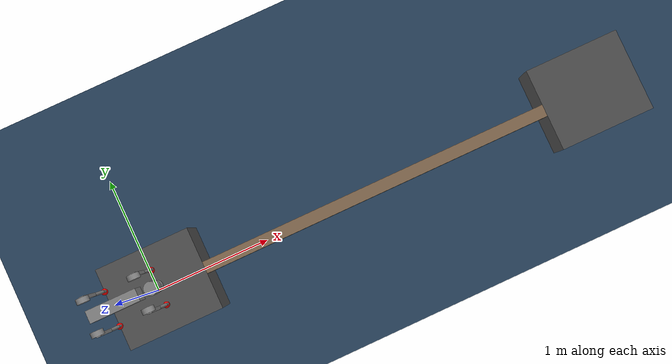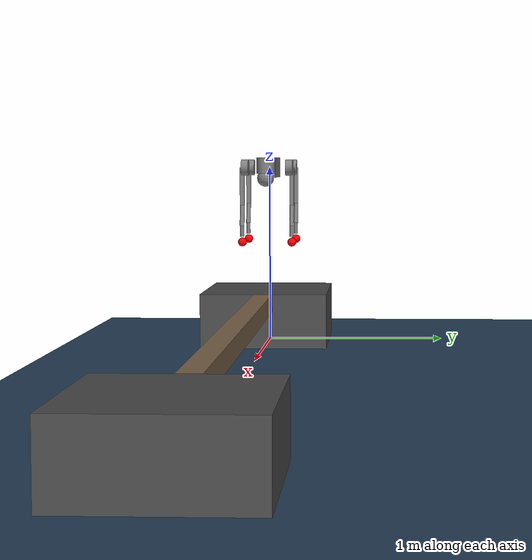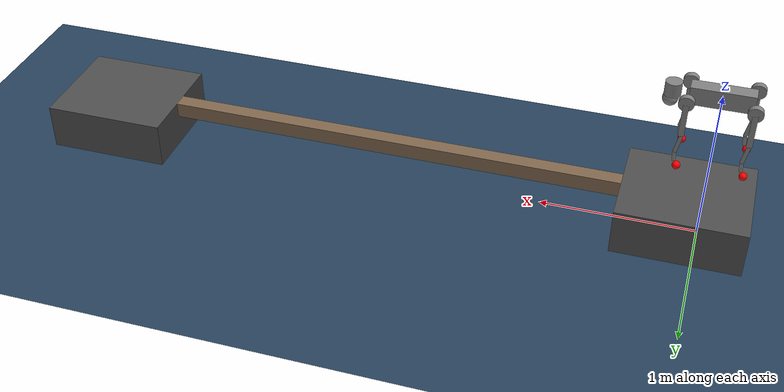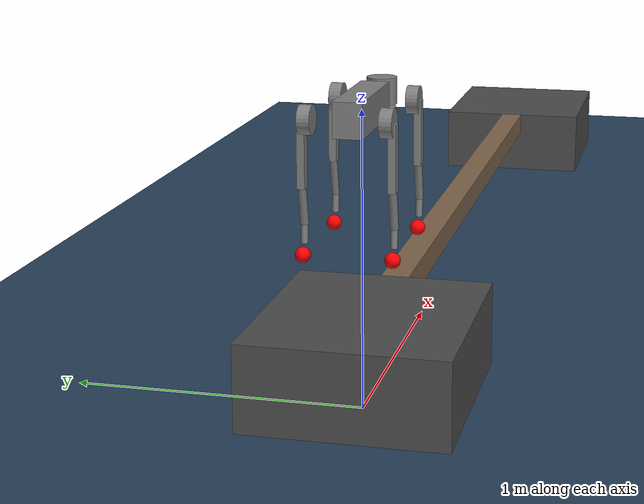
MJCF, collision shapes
<mujoco model="go2 bridge camera scene">
  <include file="go2.xml"/>

  <statistic center="2.0 0 0.5" extent="6.0"/>

  <visual>
    <headlight diffuse="0.6 0.6 0.6" ambient="0.3 0.3 0.3" specular="0 0 0"/>
    <rgba haze="0.15 0.25 0.35 1"/>
    <global azimuth="-130" elevation="-20"/>
  </visual>

  <asset>
    <texture type="skybox" builtin="gradient" rgb1="0.3 0.5 0.7" rgb2="0 0 0" width="512" height="3072"/>
    <texture type="2d" name="groundplane" builtin="checker" mark="edge" rgb1="0.2 0.3 0.4" rgb2="0.1 0.2 0.3"
      markrgb="0.8 0.8 0.8" width="300" height="300"/>
    <material name="groundplane" texture="groundplane" texuniform="true" texrepeat="5 5" reflectance="0.2"/>
  </asset>

  <worldbody>
    <light pos="0 0 3.0" dir="0 0 -1" directional="true"/>

    <!-- Low catch floor below the bridge.  It is intentionally below the camera
      prior's height filter, so the bridge remains the local walkable surface. -->
    <geom name="floor" pos="2.0 0 0.0" size="0 0 0.05" type="plane" material="groundplane"/>

    <geom name="platform_a" type="box" size="0.4 0.35 0.15" pos="0.1 0 0.15" rgba="0.3 0.3 0.3 1"/>
    <geom name="straight_bridge" type="box" size="1.5 0.05 0.05" pos="2.0 0 0.25" rgba="0.5 0.4 0.3 1"/>
    <geom name="platform_b" type="box" size="0.4 0.35 0.15" pos="3.9 0 0.15" rgba="0.3 0.3 0.3 1"/>

  </worldbody>
</mujoco>

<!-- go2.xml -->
<mujoco model="go2">
  <compiler angle="radian" meshdir="assets" autolimits="true" />

  <option cone="elliptic" impratio="100" />

  <default>
    <default class="go2">
      <geom friction="0.4" margin="0.001" condim="1"/>
      <joint axis="0 1 0" damping="0.1" armature="0.01" frictionloss="0.2"/>
      <motor ctrlrange="-23.7 23.7"/>
      <default class="abduction">
        <joint axis="1 0 0" range="-1.0472 1.0472"/>
      </default>
      <default class="hip">
        <default class="front_hip">
          <joint range="-1.5708 3.4907"/>
        </default>
        <default class="back_hip">
          <joint range="-0.5236 4.5379"/>
        </default>
      </default>
      <default class="knee">
        <joint range="-2.7227 -0.83776"/>
        <motor ctrlrange="-45.43 45.43"/>
      </default>
      <default class="visual">
        <geom type="mesh" contype="0" conaffinity="0" group="2"/>
      </default>
      <default class="collision">
        <geom group="3"/>
        <default class="foot">
          <geom size="0.022" pos="-0.002 0 0" priority="1" condim="6"
            friction="0.4 0.02 0.01"/>
        </default>
      </default>
      <default class="foot_site">
        <site type="sphere" size="0.025" pos="-0.002 0 0" rgba="1 0 0 1.0"/>
      </default>
    </default>
  </default>

  <asset>
    <material name="metal" rgba=".9 .95 .95 1" />
    <material name="black" rgba="0 0 0 1" />
    <material name="white" rgba="1 1 1 1" />
    <material name="gray" rgba="0.671705 0.692426 0.774270 1" />

    <mesh file="base_0.obj" />
    <mesh file="base_1.obj" />
    <mesh file="base_2.obj" />
    <mesh file="base_3.obj" />
    <mesh file="base_4.obj" />
    <mesh file="hip_0.obj" />
    <mesh file="hip_1.obj" />
    <mesh file="thigh_0.obj" />
    <mesh file="thigh_1.obj" />
    <mesh file="thigh_mirror_0.obj" />
    <mesh file="thigh_mirror_1.obj" />
    <mesh file="calf_0.obj" />
    <mesh file="calf_1.obj" />
    <mesh file="calf_mirror_0.obj" />
    <mesh file="calf_mirror_1.obj" />
    <mesh file="foot.obj" />
  </asset>

  <worldbody>
    <!-- total mass: 16.514412 kg, hw: 16.45 kg -->
    <body name="base_link" pos="0 0 1.0" childclass="go2">
      <inertial pos="0.021112 0 -0.005366" quat="-0.000543471 0.713435 -0.00173769 0.700719"
        mass="6.921"
        diaginertia="0.107027 0.0980771 0.0244531" />
      <freejoint />
      <geom mesh="base_0" material="black" class="visual" />
      <geom mesh="base_1" material="black" class="visual" />
      <geom mesh="base_2" material="black" class="visual" />
      <geom mesh="base_3" material="white" class="visual" />
      <geom mesh="base_4" material="gray" class="visual" />
      <geom size="0.1881 0.04675 0.057" type="box" class="collision" />
      <geom size="0.05 0.045" pos="0.285 0 0.01" type="cylinder" class="collision" />
      <geom size="0.047" pos="0.293 0 -0.06" class="collision" />
      <site name="imu" pos="-0.02557 0 0.04232" />
      <camera name="front_depth_camera" mode="fixed" resolution="1 1" />
      <geom name="front_depth_camera_visual" type="box" pos="0 0 0"
        size="0.0125 0.045 0.0125"
        contype="0" conaffinity="0" group="1" rgba="0 0 0 0" />
      <body name="FL_hip_rotor" pos="0.11215 0.04675 0">
        <inertial pos="0 0 0" mass="0.089"
          diaginertia="0.000111842 0.000059647 0.000059647" />
      </body>
      <body name="FL_hip" pos="0.1934 0.0465 0">
        <inertial pos="-0.0054 0.00194 -0.000105" quat="0.497014 0.499245 0.505462 0.498237"
          mass="0.678"
          diaginertia="0.00088403 0.000596003 0.000479967" />
        <joint name="FL_hip_joint" class="abduction" />
        <geom mesh="hip_0" material="metal" class="visual" />
        <geom mesh="hip_1" material="gray" class="visual" />
        <geom size="0.046 0.02" pos="0 0.08 0" quat="1 1 0 0" type="cylinder" class="collision" />
        <body name="FL_thigh_rotor" pos="0 -0.00015 0">
          <inertial pos="0 0 0" mass="0.089"
            diaginertia="0.000059647 0.000111842 0.000059647" />
        </body>
        <body name="FL_thigh" pos="0 0.0955 0">
          <inertial pos="-0.00374 -0.0223 -0.0327" quat="0.829533 0.0847635 -0.0200632 0.551623"
            mass="1.152"
            diaginertia="0.00594973 0.00584149 0.000878787" />
          <joint name="FL_thigh_joint" class="front_hip" />
          <geom mesh="thigh_0" material="metal" class="visual" />
          <geom mesh="thigh_1" material="gray" class="visual" />
          <geom size="0.1065 0.01225 0.017" pos="0 0 -0.1065" quat="0.707107 0 0.707107 0"
            type="box" class="collision" />
          <body name="FL_calf_rotor" pos="0 -0.03235 0">
            <inertial pos="0 0 0" mass="0.089"
              diaginertia="0.000059647 0.000111842 0.000059647" />
          </body>
          <body name="FL_calf" pos="0 0 -0.213">
            <inertial pos="0.00629595 -0.000622121 -0.141417"
              quat="0.710672 0.00154099 -0.00450087 0.703508"
              mass="0.241352" diaginertia="0.0014901 0.00146356 5.31397e-05" />
            <joint name="FL_calf_joint" class="knee" />
            <geom mesh="calf_0" material="gray" class="visual" />
            <geom mesh="calf_1" material="black" class="visual" />
            <geom size="0.012 0.06" pos="0.008 0 -0.06" quat="0.994493 0 -0.104807 0"
              type="cylinder" class="collision" />
            <geom size="0.011 0.0325" pos="0.02 0 -0.148" quat="0.999688 0 0.0249974 0"
              type="cylinder" class="collision" />
            <body name="FL_foot" pos="0 0 -0.213" >
              <inertial diaginertia="9.600000000000001e-06 9.600000000000001e-06 9.600000000000001e-06" mass="0.06" pos="0 0 0"/>
              <body name="FL_foot_for_collision" pos="0 0 0">
                <inertial diaginertia="1e-14 1e-14 1e-14" mass="1e-6" pos="0 0 0"/>
                <geom pos="0 0 0" mesh="foot" class="visual" material="black" />
                <geom name="FL" class="foot" />
                <site name="FL_site" class="foot_site"/>
                <site name="FL_force" pos="0 0 0" size="0.017" type="sphere"/>
              </body>
            </body>
          </body>
        </body>
      </body>
      <body name="FR_hip_rotor" pos="0.11215 -0.04675 0">
        <inertial pos="0 0 0" mass="0.089"
          diaginertia="0.000111842 0.000059647 0.000059647" />
      </body>
      <body name="FR_hip" pos="0.1934 -0.0465 0">
        <inertial pos="-0.0054 -0.00194 -0.000105" quat="0.498237 0.505462 0.499245 0.497014"
          mass="0.678"
          diaginertia="0.00088403 0.000596003 0.000479967" />
        <joint name="FR_hip_joint" class="abduction" />
        <geom mesh="hip_0" material="metal" class="visual" quat="4.63268e-05 1 0 0" />
        <geom mesh="hip_1" material="gray" class="visual" quat="4.63268e-05 1 0 0" />
        <geom size="0.046 0.02" pos="0 -0.08 0" quat="0.707107 0.707107 0 0" type="cylinder"
          class="collision" />
        <body name="FR_thigh_rotor" pos="0 0.00015 0">
          <inertial pos="0 0 0" mass="0.089"
            diaginertia="0.000059647 0.000111842 0.000059647" />
        </body>
        <body name="FR_thigh" pos="0 -0.0955 0">
          <inertial pos="-0.00374 0.0223 -0.0327" quat="0.551623 -0.0200632 0.0847635 0.829533"
            mass="1.152"
            diaginertia="0.00594973 0.00584149 0.000878787" />
          <joint name="FR_thigh_joint" class="front_hip" />
          <geom mesh="thigh_mirror_0" material="metal" class="visual" />
          <geom mesh="thigh_mirror_1" material="gray" class="visual" />
          <geom size="0.1065 0.01225 0.017" pos="0 0 -0.1065" quat="0.707107 0 0.707107 0"
            type="box" class="collision" />
          <body name="FR_calf_rotor" pos="0 0.03235 0">
            <inertial pos="0 0 0" mass="0.089"
              diaginertia="0.000059647 0.000111842 0.000059647" />
          </body>
          <body name="FR_calf" pos="0 0 -0.213">
            <inertial pos="0.00629595 0.000622121 -0.141417"
              quat="0.703508 -0.00450087 0.00154099 0.710672"
              mass="0.241352" diaginertia="0.0014901 0.00146356 5.31397e-05" />
            <joint name="FR_calf_joint" class="knee" />
            <geom mesh="calf_mirror_0" material="gray" class="visual" />
            <geom mesh="calf_mirror_1" material="black" class="visual" />
            <geom size="0.013 0.06" pos="0.01 0 -0.06" quat="0.995004 0 -0.0998334 0"
              type="cylinder" class="collision" />
            <geom size="0.011 0.0325" pos="0.02 0 -0.148" quat="0.999688 0 0.0249974 0"
              type="cylinder" class="collision" />
            <body name="FR_foot" pos="0 0 -0.213" >
              <inertial diaginertia="9.600000000000001e-06 9.600000000000001e-06 9.600000000000001e-06" mass="0.06" pos="0 0 0"/>
              <body name="FR_foot_for_collision" pos="0 0 0">
                <inertial diaginertia="1e-14 1e-14 1e-14" mass="1e-6" pos="0 0 0"/>
                <geom pos="0 0 0" mesh="foot" class="visual" material="black" />
                <geom name="FR" class="foot" />
                <site name="FR_site" class="foot_site"/>
                <site name="FR_force" pos="0 0 0" size="0.017" type="sphere"/>
              </body>
            </body>
          </body>
        </body>
      </body>
      <body name="RL_hip_rotor" pos="-0.11215 0.04675 0">
        <inertial pos="0 0 0" mass="0.089"
          diaginertia="0.000111842 0.000059647 0.000059647" />
      </body>
      <body name="RL_hip" pos="-0.1934 0.0465 0">
        <inertial pos="0.0054 0.00194 -0.000105" quat="0.505462 0.498237 0.497014 0.499245"
          mass="0.678"
          diaginertia="0.00088403 0.000596003 0.000479967" />
        <joint name="RL_hip_joint" class="abduction" />
        <geom mesh="hip_0" material="metal" class="visual" quat="4.63268e-05 0 1 0" />
        <geom mesh="hip_1" material="gray" class="visual" quat="4.63268e-05 0 1 0" />
        <geom size="0.046 0.02" pos="0 0.08 0" quat="0.707107 0.707107 0 0" type="cylinder"
          class="collision" />
        <body name="RL_thigh_rotor" pos="0 -0.00015 0">
          <inertial pos="0 0 0" mass="0.089"
            diaginertia="0.000059647 0.000111842 0.000059647" />
        </body>
        <body name="RL_thigh" pos="0 0.0955 0">
          <inertial pos="-0.00374 -0.0223 -0.0327" quat="0.829533 0.0847635 -0.0200632 0.551623"
            mass="1.152"
            diaginertia="0.00594973 0.00584149 0.000878787" />
          <joint name="RL_thigh_joint" class="back_hip" />
          <geom mesh="thigh_0" material="metal" class="visual" />
          <geom mesh="thigh_1" material="gray" class="visual" />
          <geom size="0.1065 0.01225 0.017" pos="0 0 -0.1065" quat="0.707107 0 0.707107 0"
            type="box" class="collision" />
          <body name="RL_calf_rotor" pos="0 -0.03235 0">
            <inertial pos="0 0 0" mass="0.089"
              diaginertia="0.000059647 0.000111842 0.000059647" />
          </body>
          <body name="RL_calf" pos="0 0 -0.213">
            <inertial pos="0.00629595 -0.000622121 -0.141417"
              quat="0.710672 0.00154099 -0.00450087 0.703508"
              mass="0.241352" diaginertia="0.0014901 0.00146356 5.31397e-05" />
            <joint name="RL_calf_joint" class="knee" />
            <geom mesh="calf_0" material="gray" class="visual" />
            <geom mesh="calf_1" material="black" class="visual" />
            <geom size="0.013 0.06" pos="0.01 0 -0.06" quat="0.995004 0 -0.0998334 0"
              type="cylinder" class="collision" />
            <geom size="0.011 0.0325" pos="0.02 0 -0.148" quat="0.999688 0 0.0249974 0"
              type="cylinder" class="collision" />
            <body name="RL_foot" pos="0 0 -0.213" >
              <inertial diaginertia="9.600000000000001e-06 9.600000000000001e-06 9.600000000000001e-06" mass="0.06" pos="0 0 0"/>
              <body name="RL_foot_for_collision" pos="0 0 0">
                <inertial diaginertia="1e-14 1e-14 1e-14" mass="1e-6" pos="0 0 0"/>
                <geom pos="0 0 0" mesh="foot" class="visual" material="black" />
                <geom name="RL" class="foot" />
                <site name="RL_site" class="foot_site"/>
                <site name="RL_force" pos="0 0 0" size="0.017" type="sphere"/>
              </body>
            </body>
          </body>
        </body>
      </body>
      <body name="RR_hip_rotor" pos="-0.11215 -0.04675 0">
        <inertial pos="0 0 0" mass="0.089"
          diaginertia="0.000111842 0.000059647 0.000059647" />
      </body>
      <body name="RR_hip" pos="-0.1934 -0.0465 0">
        <inertial pos="0.0054 -0.00194 -0.000105" quat="0.499245 0.497014 0.498237 0.505462"
          mass="0.678"
          diaginertia="0.00088403 0.000596003 0.000479967" />
        <joint name="RR_hip_joint" class="abduction" />
        <geom mesh="hip_0" material="metal" class="visual"
          quat="2.14617e-09 4.63268e-05 4.63268e-05 -1" />
        <geom mesh="hip_1" material="gray" class="visual"
          quat="2.14617e-09 4.63268e-05 4.63268e-05 -1" />
        <geom size="0.046 0.02" pos="0 -0.08 0" quat="0.707107 0.707107 0 0" type="cylinder"
          class="collision" />
        <body name="RR_thigh_rotor" pos="0 0.00015 0">
          <inertial pos="0 0 0" mass="0.089"
            diaginertia="0.000059647 0.000111842 0.000059647" />
        </body>
        <body name="RR_thigh" pos="0 -0.0955 0">
          <inertial pos="-0.00374 0.0223 -0.0327" quat="0.551623 -0.0200632 0.0847635 0.829533"
            mass="1.152"
            diaginertia="0.00594973 0.00584149 0.000878787" />
          <joint name="RR_thigh_joint" class="back_hip" />
          <geom mesh="thigh_mirror_0" material="metal" class="visual" />
          <geom mesh="thigh_mirror_1" material="gray" class="visual" />
          <geom size="0.1065 0.01225 0.017" pos="0 0 -0.1065" quat="0.707107 0 0.707107 0"
            type="box" class="collision" />
          <body name="RR_calf_rotor" pos="0 0.03235 0">
            <inertial pos="0 0 0" mass="0.089"
              diaginertia="0.000059647 0.000111842 0.000059647" />
          </body>
          <body name="RR_calf" pos="0 0 -0.213">
            <inertial pos="0.00629595 0.000622121 -0.141417"
              quat="0.703508 -0.00450087 0.00154099 0.710672"
              mass="0.241352" diaginertia="0.0014901 0.00146356 5.31397e-05" />
            <joint name="RR_calf_joint" class="knee" />
            <geom mesh="calf_mirror_0" material="gray" class="visual" />
            <geom mesh="calf_mirror_1" material="black" class="visual" />
            <geom size="0.013 0.06" pos="0.01 0 -0.06" quat="0.995004 0 -0.0998334 0"
              type="cylinder" class="collision" />
            <geom size="0.011 0.0325" pos="0.02 0 -0.148" quat="0.999688 0 0.0249974 0"
              type="cylinder" class="collision" />
            <body name="RR_foot" pos="0 0 -0.213" >
              <inertial diaginertia="9.600000000000001e-06 9.600000000000001e-06 9.600000000000001e-06" mass="0.06" pos="0 0 0"/>
              <body name="RR_foot_for_collision" pos="0 0 0">
                <inertial diaginertia="1e-14 1e-14 1e-14" mass="1e-6" pos="0 0 0"/>
                <geom pos="0 0 0" mesh="foot" class="visual" material="black" />
                <geom name="RR" class="foot" />
                <site name="RR_site" class="foot_site"/>
                <site name="RR_force" pos="0 0 0" size="0.017" type="sphere"/>
              </body>
            </body>
          </body>
        </body>
      </body>
    </body>
  </worldbody>

  <actuator>
    <motor class="abduction" name="FR_hip" joint="FR_hip_joint" />
    <motor class="hip" name="FR_thigh" joint="FR_thigh_joint" />
    <motor class="knee" name="FR_calf" joint="FR_calf_joint" />
    <motor class="abduction" name="FL_hip" joint="FL_hip_joint" />
    <motor class="hip" name="FL_thigh" joint="FL_thigh_joint" />
    <motor class="knee" name="FL_calf" joint="FL_calf_joint" />
    <motor class="abduction" name="RR_hip" joint="RR_hip_joint" />
    <motor class="hip" name="RR_thigh" joint="RR_thigh_joint" />
    <motor class="knee" name="RR_calf" joint="RR_calf_joint" />
    <motor class="abduction" name="RL_hip" joint="RL_hip_joint" />
    <motor class="hip" name="RL_thigh" joint="RL_thigh_joint" />
    <motor class="knee" name="RL_calf" joint="RL_calf_joint" />
  </actuator>

  <sensor>
    <jointpos name="FR_hip_pos" joint="FR_hip_joint" />
    <jointpos name="FR_thigh_pos" joint="FR_thigh_joint" />
    <jointpos name="FR_calf_pos" joint="FR_calf_joint" />
    <jointpos name="FL_hip_pos" joint="FL_hip_joint" />
    <jointpos name="FL_thigh_pos" joint="FL_thigh_joint" />
    <jointpos name="FL_calf_pos" joint="FL_calf_joint" />
    <jointpos name="RR_hip_pos" joint="RR_hip_joint" />
    <jointpos name="RR_thigh_pos" joint="RR_thigh_joint" />
    <jointpos name="RR_calf_pos" joint="RR_calf_joint" />
    <jointpos name="RL_hip_pos" joint="RL_hip_joint" />
    <jointpos name="RL_thigh_pos" joint="RL_thigh_joint" />
    <jointpos name="RL_calf_pos" joint="RL_calf_joint" />

    <jointvel name="FR_hip_vel" joint="FR_hip_joint" />
    <jointvel name="FR_thigh_vel" joint="FR_thigh_joint" />
    <jointvel name="FR_calf_vel" joint="FR_calf_joint" />
    <jointvel name="FL_hip_vel" joint="FL_hip_joint" />
    <jointvel name="FL_thigh_vel" joint="FL_thigh_joint" />
    <jointvel name="FL_calf_vel" joint="FL_calf_joint" />
    <jointvel name="RR_hip_vel" joint="RR_hip_joint" />
    <jointvel name="RR_thigh_vel" joint="RR_thigh_joint" />
    <jointvel name="RR_calf_vel" joint="RR_calf_joint" />
    <jointvel name="RL_hip_vel" joint="RL_hip_joint" />
    <jointvel name="RL_thigh_vel" joint="RL_thigh_joint" />
    <jointvel name="RL_calf_vel" joint="RL_calf_joint" />

    <jointactuatorfrc name="FR_hip_torque" joint="FR_hip_joint" noise="0.01" />
    <jointactuatorfrc name="FR_thigh_torque" joint="FR_thigh_joint" noise="0.01" />
    <jointactuatorfrc name="FR_calf_torque" joint="FR_calf_joint" noise="0.01" />
    <jointactuatorfrc name="FL_hip_torque" joint="FL_hip_joint" noise="0.01" />
    <jointactuatorfrc name="FL_thigh_torque" joint="FL_thigh_joint" noise="0.01" />
    <jointactuatorfrc name="FL_calf_torque" joint="FL_calf_joint" noise="0.01" />
    <jointactuatorfrc name="RR_hip_torque" joint="RR_hip_joint" noise="0.01" />
    <jointactuatorfrc name="RR_thigh_torque" joint="RR_thigh_joint" noise="0.01" />
    <jointactuatorfrc name="RR_calf_torque" joint="RR_calf_joint" noise="0.01" />
    <jointactuatorfrc name="RL_hip_torque" joint="RL_hip_joint" noise="0.01" />
    <jointactuatorfrc name="RL_thigh_torque" joint="RL_thigh_joint" noise="0.01" />
    <jointactuatorfrc name="RL_calf_torque" joint="RL_calf_joint" noise="0.01" />

    <framequat name="imu_quat" objtype="site" objname="imu" />
    <gyro name="imu_gyro" site="imu" />
    <accelerometer name="imu_acc" site="imu" />

    <!-- ground truth -->
    <framepos name="frame_pos" objtype="xbody" objname="base_link" />
    <framelinvel name="frame_vel" objtype="xbody" objname="base_link" />

    <touch name="FR_touch" site="FR_site"/>
    <touch name="FL_touch" site="FL_site"/>
    <touch name="RR_touch" site="RR_site"/>
    <touch name="RL_touch" site="RL_site"/>

    <force name="FR_grf" site="FR_force"/>
    <force name="FL_grf" site="FL_force"/>
    <force name="RR_grf" site="RR_force"/>
    <force name="RL_grf" site="RL_force"/>

    <framequat name="FR_quat" objname="FR_force" objtype="site"/>
    <framequat name="FL_quat" objname="FL_force" objtype="site"/>
    <framequat name="RR_quat" objname="RR_force" objtype="site"/>
    <framequat name="RL_quat" objname="RL_force" objtype="site"/>

    <framepos name="FR_pos" objtype="site" objname="FR_site" />
    <framepos name="FL_pos" objtype="site" objname="FL_site" />
    <framepos name="RR_pos" objtype="site" objname="RR_site" />
    <framepos name="RL_pos" objtype="site" objname="RL_site" />

    <framelinvel name="FR_linvel" objtype="site" objname="FR_site" />
    <framelinvel name="FL_linvel" objtype="site" objname="FL_site" />
    <framelinvel name="RR_linvel" objtype="site" objname="RR_site" />
    <framelinvel name="RL_linvel" objtype="site" objname="RL_site" />

    <contact name="FR_contact" geom1="FR" data="force" reduce="netforce"/>
    <contact name="FL_contact" geom1="FL" data="force" reduce="netforce"/>
    <contact name="RR_contact" geom1="RR" data="force" reduce="netforce"/>
    <contact name="RL_contact" geom1="RL" data="force" reduce="netforce"/>
  </sensor>

</mujoco>
